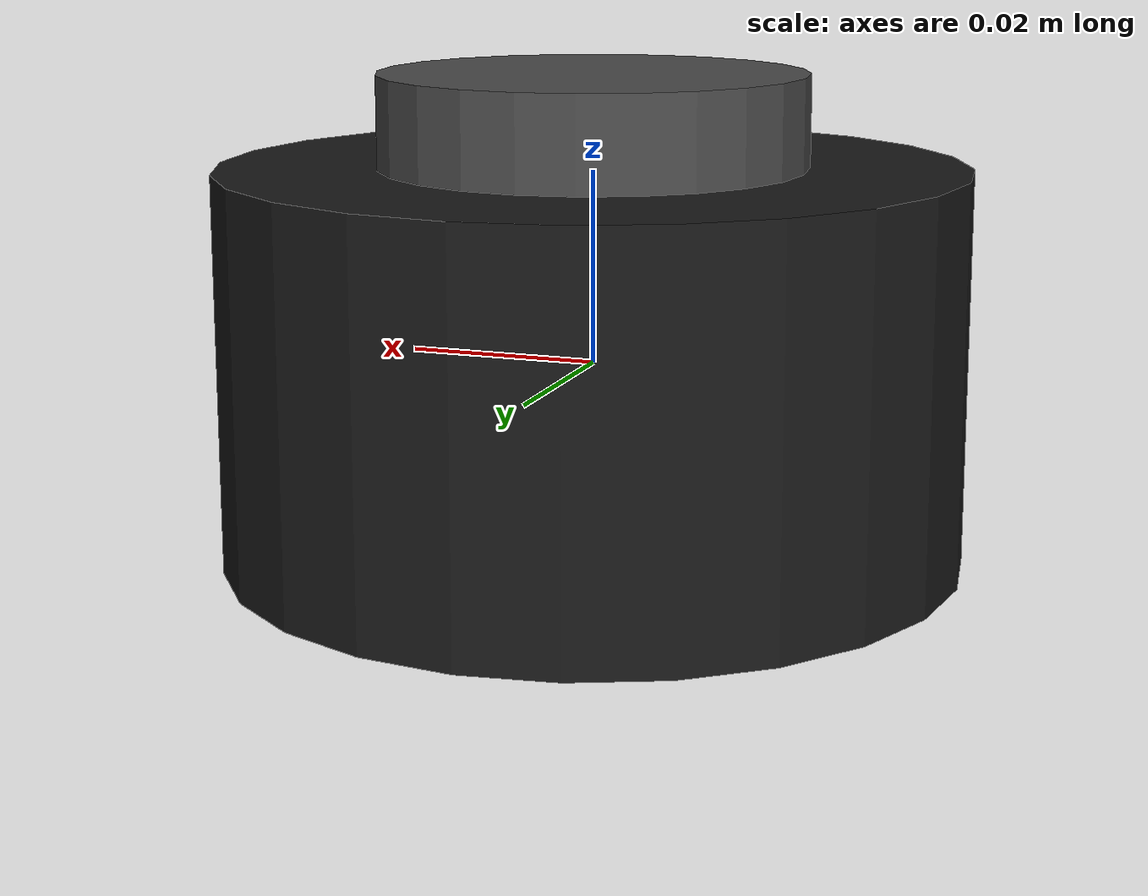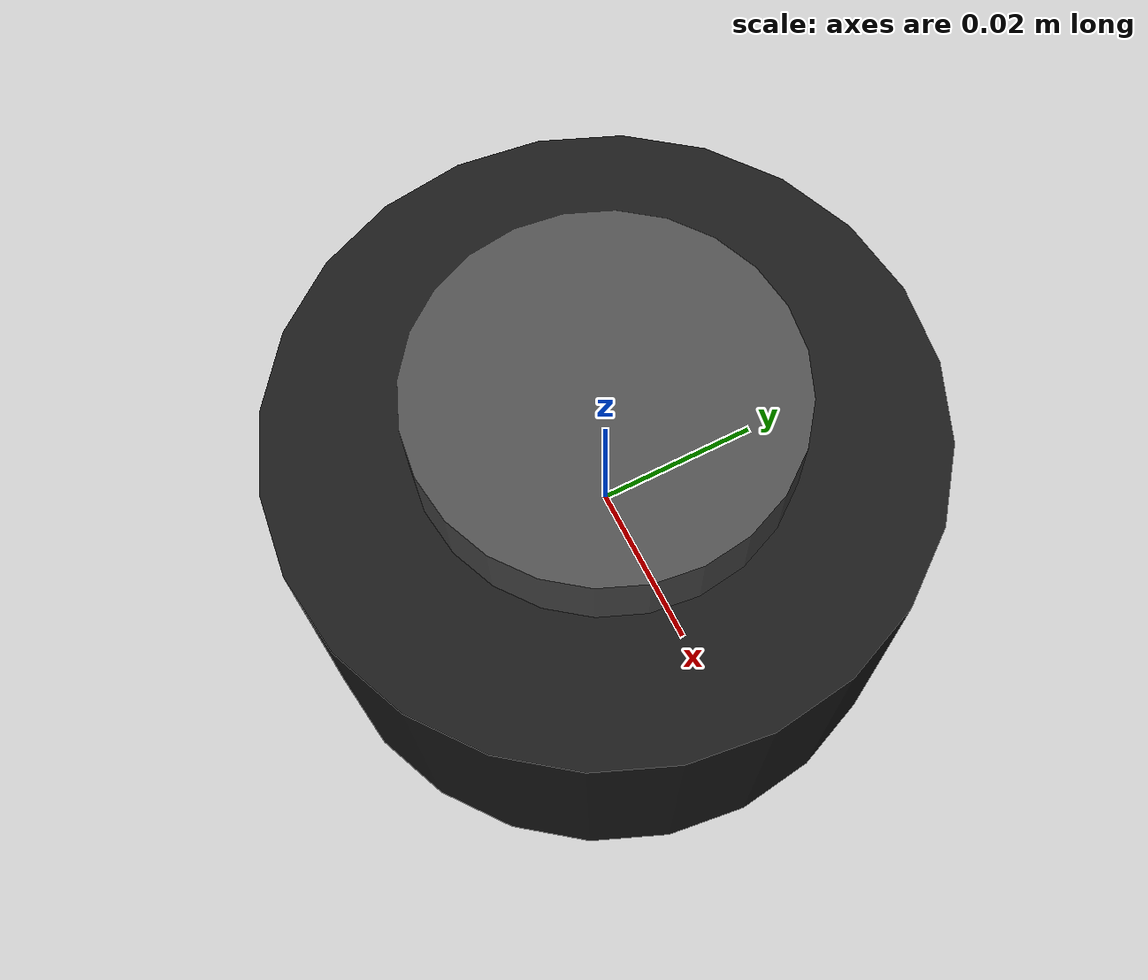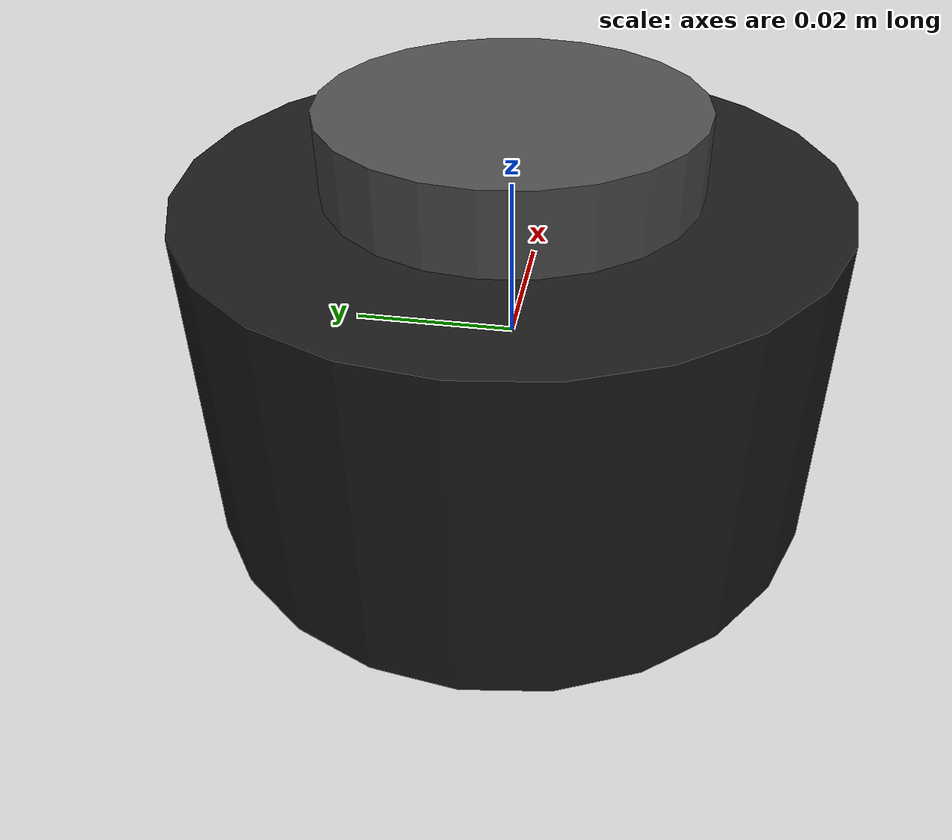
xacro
<?xml version="1.0"?>
<!-- RPLidar A1M8 — 2D LiDAR Xacro (Ignition Gazebo Fortress)    -->
<!-- Hardware Spec (Real Sensor):                                  -->
<!--   Horizontal FOV  : 360°, 360 samples (1°/beam)             -->
<!--   Vertical Channels: 1  ← Pure 2D laser plane               -->
<!--   Min Range       : 0.15 m                                   -->
<!--   Max Range       : 8.0 m                                    -->
<!--   Update Rate     : 5.5 Hz                                   -->
<!--   Noise           : Gaussian σ = 0.01 m                      -->
<!-- ROS 2 Bridge (add to simulation.launch.py):                  -->
<!--   /roboboat/sensors/lidar/scan                               -->
<!--   @sensor_msgs/msg/LaserScan                                 -->
<!--   [ignition.msgs.LaserScan                                   -->
<!-- Published Topic: /scan  (after remapping in bridge)          -->

<robot xmlns:xacro="http://ros.org/wiki/xacro">

  <!--  Physical link — RPLidar A1M8 body (cylindrical housing)  -->
  <!--  Dimensions: ∅77mm × 41mm, mass: 170g                    -->
  <link name="rplidar_a1_link">

    <!-- Visual: cylindrical base body -->
    <visual name="visual_rplidar_body">
      <origin xyz="0.0 0.0 0.0" rpy="0 0 0"/>
      <geometry>
        <cylinder length="0.041" radius="0.0385"/>
      </geometry>
      <material name="rplidar_black">
        <color rgba="0.1 0.1 0.1 1.0"/>
      </material>
    </visual>

    <!-- Visual: rotating scan head (top disc) -->
    <visual name="visual_rplidar_head">
      <origin xyz="0.0 0.0 0.025" rpy="0 0 0"/>
      <geometry>
        <cylinder length="0.010" radius="0.022"/>
      </geometry>
      <material name="rplidar_dark_grey">
        <color rgba="0.3 0.3 0.3 1.0"/>
      </material>
    </visual>

    <!-- Collision geometry -->
    <collision name="collision_rplidar">
      <origin xyz="0.0 0.0 0.0" rpy="0.0 0.0 0.0"/>
      <geometry>
        <cylinder length="0.045" radius="0.040"/>
      </geometry>
    </collision>

    <!-- Inertia: m=0.17kg, r=0.0385m, h=0.041m -->
    <inertial>
      <origin xyz="0.0 0.0 0.0" rpy="0 0 0"/>
      <mass value="0.17"/>
      <inertia
        ixx="0.0001063" ixy="0.0" ixz="0.0"
        iyy="0.0001063" iyz="0.0"
        izz="0.0001261"/>
    </inertial>

  </link>

  <!--  Ignition Gazebo gpu_lidar sensor definition             -->
  <!--  This single vertical sample creates a PURE 2D laser     -->
  <!--  plane. The plugin outputs sensor_msgs/LaserScan         -->
  <!--  (not PointCloud2) when vertical samples == 1.           -->
  <gazebo reference="rplidar_a1_link">

    <sensor name="sensor_rplidar_a1" type="gpu_lidar">

      <!-- Ignition topic. ros_gz_bridge maps this to /scan -->
      <topic>/roboboat/sensors/lidar/scan</topic>

      <!-- TF frame for the scan header -->
      <gz_frame_id>rplidar_a1_link</gz_frame_id>

      <always_on>true</always_on>
      <visualize>true</visualize>

      <!-- RPLidar A1M8 nominal scan rate: 5.5 Hz -->
      <update_rate>5.5</update_rate>

      <ray>
        <scan>

          <!-- ── Horizontal: 360° full sweep, 360 beams ── -->
          <!-- Resolution: 1°/beam  →  samples=360         -->
          <horizontal>
            <samples>360</samples>
            <resolution>1</resolution>
            <min_angle>-3.14159265358979</min_angle>
            <max_angle>3.14159265358979</max_angle>
          </horizontal>

          <!-- ── Vertical: EXACTLY 1 sample ─────────────── -->
          <!-- This collapses the 3D ray-cast into a single  -->
          <!-- horizontal plane → pure 2D LaserScan output.  -->
          <!-- min_angle == max_angle == 0 ensures the plane -->
          <!-- is perfectly horizontal (no tilt).            -->
          <vertical>
            <samples>1</samples>
            <resolution>1</resolution>
            <min_angle>0.0</min_angle>
            <max_angle>0.0</max_angle>
          </vertical>

        </scan>

        <range>
          <!-- RPLidar A1M8 blind zone: 0.15 m -->
          <min>0.15</min>
          <!-- RPLidar A1M8 max range: 8.0 m (indoor/low-reflectivity) -->
          <max>8.0</max>
          <!-- 1 cm range resolution -->
          <resolution>0.01</resolution>
        </range>

        <!-- Gaussian noise: A1M8 typical ±1 cm accuracy -->
        <noise>
          <type>gaussian</type>
          <mean>0.0</mean>
          <stddev>0.01</stddev>
        </noise>

      </ray>

    </sensor>

  </gazebo>

</robot>
